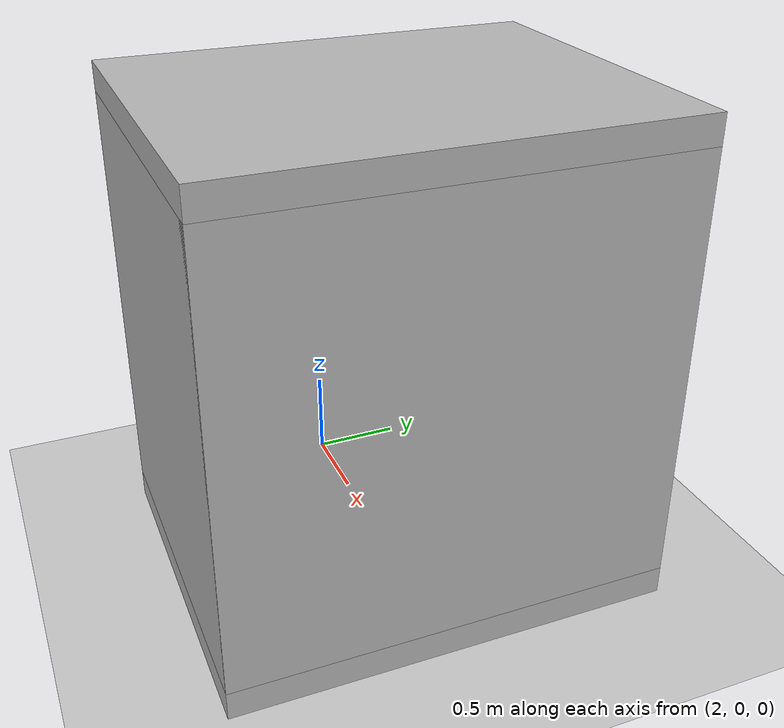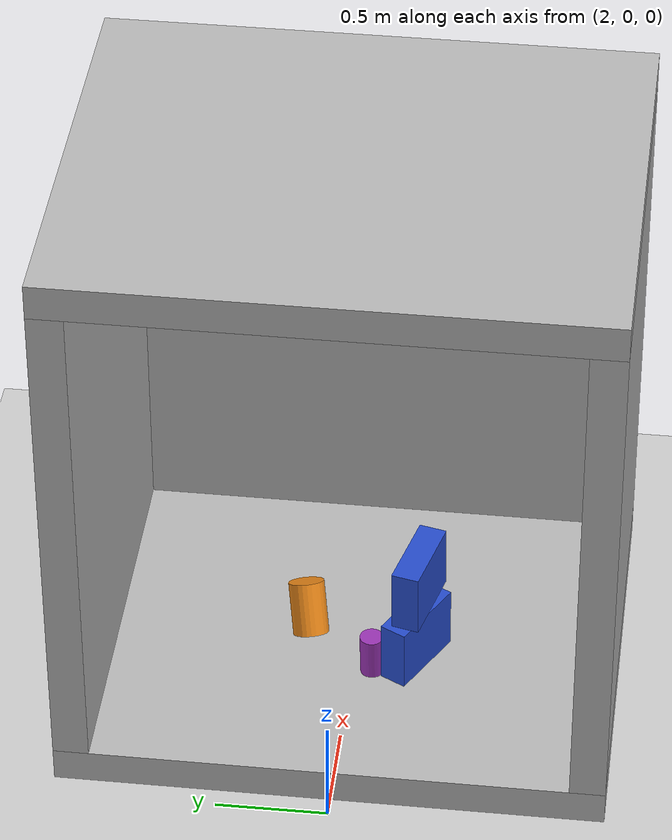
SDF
<sdf version="1.6">
 <world name="default">
  <light name="sun" type="directional">
   <pose>0 0 10 0 -0 0</pose>
   <diffuse>0.8 0.8 0.8 1</diffuse>
   <specular>0.1 0.1 0.1 1</specular>
   <attenuation>
    <range>1000</range>
    <constant>0.9</constant>
    <linear>0.01</linear>
    <quadratic>0.001</quadratic>
   </attenuation>
   <direction>-0.5 0.5 -1</direction>
  </light>
  <model name="ground_plane">
   <static>1</static>
   <link name="link">
    <collision name="collision">
     <geometry><plane><normal>0 0 1</normal><size>100 100</size></plane></geometry>
     <surface><friction><ode><mu>100</mu><mu2>50</mu2></ode></friction></surface>
    </collision>
    <visual name="visual">
     <cast_shadows>0</cast_shadows>
     <geometry><plane><normal>0 0 1</normal><size>100 100</size></plane></geometry>
     <material>
      <script><uri>file://media/materials/scripts/gazebo.material</uri><name>Gazebo/Grey</name></script>
     </material>
    </visual>
   </link>
  </model>
  <physics name="default_physics" default="0" type="ode">
   <real_time_update_rate>0</real_time_update_rate>
   <max_step_size>0.001</max_step_size>
   <real_time_factor>1</real_time_factor>
  </physics>
  <gravity>0 0 -9.8</gravity>
  <magnetic_field>6e-06 2.3e-05 -4.2e-05</magnetic_field>
  <atmosphere type="adiabatic"/>
  <scene><ambient>0.4 0.4 0.4 1</ambient><background>0.7 0.7 0.7 1</background><shadows>1</shadows></scene>
  <spherical_coordinates>
   <surface_model>EARTH_WGS84</surface_model>
   <latitude_deg>0</latitude_deg>
   <longitude_deg>0</longitude_deg>
   <elevation>0</elevation>
   <heading_deg>0</heading_deg>
  </spherical_coordinates>
  <model name="container">
   <link name="container">
    <inertial>
     <pose>0.22439 0 1.64098 0 -0 0</pose>
     <mass>205</mass>
     <inertia>
      <ixx>329.883</ixx>
      <ixy>1.59439e-15</ixy>
      <ixz>12.9249</ixz>
      <iyy>229.817</iyy>
      <iyz>1.16598e-14</iyz>
      <izz>267.609</izz>
     </inertia>
    </inertial>
    <collision name="container_back_collision">
     <pose>0.92 0 1.36 0 -0 0</pose>
     <geometry><box><size>0.16 2.45 2.4</size></box></geometry>
    </collision>
    <collision name="container_bottom_collision_1">
     <pose>0 0 0.08 0 -0 0</pose>
     <geometry><box><size>2 2.45 0.16</size></box></geometry>
    </collision>
    <collision name="container_left_collision_2">
     <pose>0 1.145 1.36 0 -0 0</pose>
     <geometry><box><size>2 0.16 2.4</size></box></geometry>
    </collision>
    <collision name="container_right_collision_3">
     <pose>0 -1.145 1.36 0 -0 0</pose>
     <geometry><box><size>2 0.16 2.4</size></box></geometry>
    </collision>
    <collision name="container_top_collision_4">
     <pose>0 0 2.64 0 -0 0</pose>
     <geometry><box><size>2 2.45 0.16</size></box></geometry>
    </collision>
    <visual name="container_back_visual">
     <pose>0.92 0 1.36 0 -0 0</pose>
     <geometry><box><size>0.16 2.45 2.4</size></box></geometry>
    </visual>
    <visual name="container_bottom_visual_1">
     <pose>0 0 0.08 0 -0 0</pose>
     <geometry><box><size>2 2.45 0.16</size></box></geometry>
    </visual>
    <visual name="container_left_visual_2">
     <pose>0 1.145 1.36 0 -0 0</pose>
     <geometry><box><size>2 0.16 2.4</size></box></geometry>
    </visual>
    <visual name="container_right_visual_3">
     <pose>0 -1.145 1.36 0 -0 0</pose>
     <geometry><box><size>2 0.16 2.4</size></box></geometry>
    </visual>
    <visual name="container_top_visual_4">
     <pose>0 0 2.64 0 -0 0</pose>
     <geometry><box><size>2 2.45 0.16</size></box></geometry>
    </visual>
   </link>
   <pose>3.08999 0.008979 -0 0 0 -0.002564</pose>
  </model>
  <model name="roblog-dhl-box-blue-simple-0-2776">
   <link name="link">
    <inertial>
     <mass>0.25</mass>
     <inertia>
      <ixx>0.00218083</ixx>
      <ixy>0</ixy>
      <ixz>0</ixz>
      <iyy>0.00473308</iyy>
      <iyz>0</iyz>
      <izz>0.00321375</izz>
     </inertia>
    </inertial>
    <collision name="link_collision"><geometry><box><size>0.372 0.126 0.298</size></box></geometry></collision>
    <visual name="link_visual">
     <geometry><box><size>0.372 0.126 0.298</size></box></geometry>
     <material>
      <script><name>Gazebo/Blue</name><uri>file://media/materials/scripts/gazebo.material</uri></script>
     </material>
    </visual>
   </link>
   <pose>2.87899 -0.298759 0.309436 -0.006975 -1e-06 -0.50202</pose>
  </model>
  <model name="roblog-dhl-box-blue-simple-1-2777">
   <link name="link">
    <inertial>
     <mass>0.25</mass>
     <inertia>
      <ixx>0.00218083</ixx>
      <ixy>0</ixy>
      <ixz>0</ixz>
      <iyy>0.00473308</iyy>
      <iyz>0</iyz>
      <izz>0.00321375</izz>
     </inertia>
    </inertial>
    <collision name="link_collision"><geometry><box><size>0.372 0.126 0.298</size></box></geometry></collision>
    <visual name="link_visual">
     <geometry><box><size>0.372 0.126 0.298</size></box></geometry>
     <material>
      <script><name>Gazebo/Blue</name><uri>file://media/materials/scripts/gazebo.material</uri></script>
     </material>
    </visual>
   </link>
   <pose>2.92028 -0.305248 0.607602 -0.011068 0.001837 -0.24577</pose>
  </model>
  <model name="roblog-vanish-detergent-simple-2-2778">
   <link name="link">
    <inertial>
     <mass>0.08</mass>
     <inertia>
      <ixx>0.000324987</ixx>
      <ixy>0</ixy>
      <ixz>0</ixz>
      <iyy>0.000324987</iyy>
      <iyz>0</iyz>
      <izz>0.00011664</izz>
     </inertia>
    </inertial>
    <collision name="link_collision">
     <geometry><cylinder><length>0.2</length><radius>0.054</radius></cylinder></geometry>
    </collision>
    <visual name="link_visual">
     <geometry><cylinder><length>0.2</length><radius>0.054</radius></cylinder></geometry>
     <material>
      <script><name>Gazebo/PurpleGlow</name><uri>file://media/materials/scripts/gazebo.material</uri></script>
     </material>
    </visual>
    <velocity_decay><linear>0.005</linear><angular>0.005</angular></velocity_decay>
   </link>
   <pose>2.78226 -0.108883 0.261011 -0.008587 -0.016991 -0.694632</pose>
  </model>
  <model name="roblog-maisels-barrel-simple-3-2779">
   <link name="link">
    <inertial>
     <mass>0.54</mass>
     <inertia>
      <ixx>0.00354312</ixx>
      <ixy>0</ixy>
      <ixz>0</ixz>
      <iyy>0.00354312</iyy>
      <iyz>0</iyz>
      <izz>0.00181548</izz>
     </inertia>
    </inertial>
    <collision name="link_collision">
     <geometry><cylinder><length>0.242</length><radius>0.082</radius></cylinder></geometry>
    </collision>
    <visual name="link_visual">
     <geometry><cylinder><length>0.242</length><radius>0.082</radius></cylinder></geometry>
     <material>
      <script><name>Gazebo/Orange</name><uri>file://media/materials/scripts/gazebo.material</uri></script>
     </material>
    </visual>
    <velocity_decay><linear>0.005</linear><angular>0.005</angular></velocity_decay>
   </link>
   <pose>3.01338 0.206817 0.305372 -0.401564 0.291561 -0.6614</pose>
  </model>
 </world>
</sdf>
